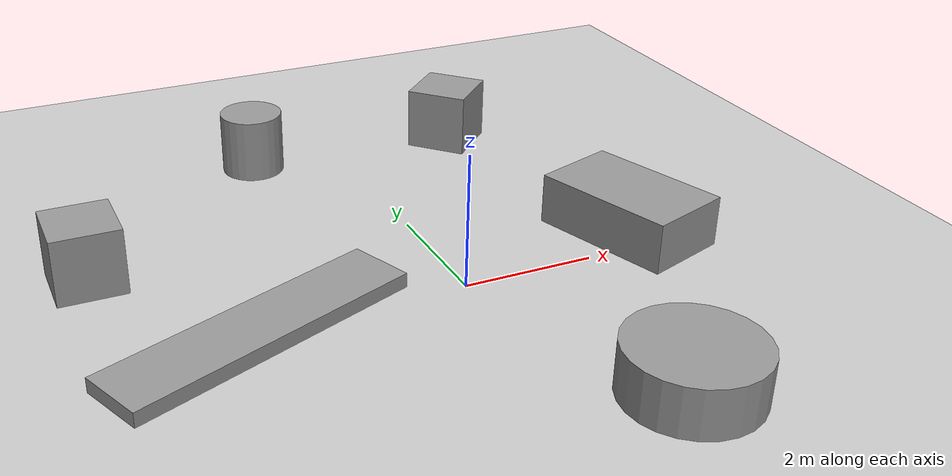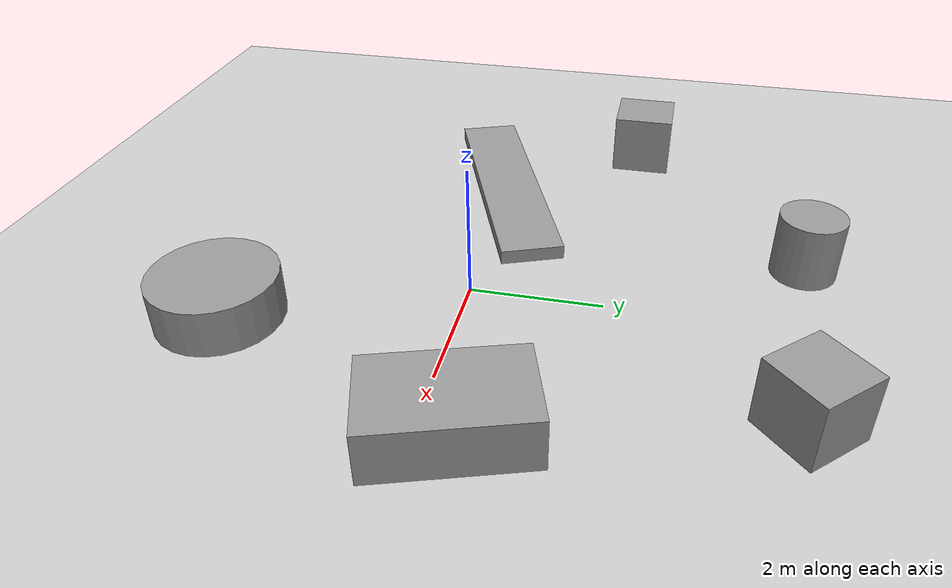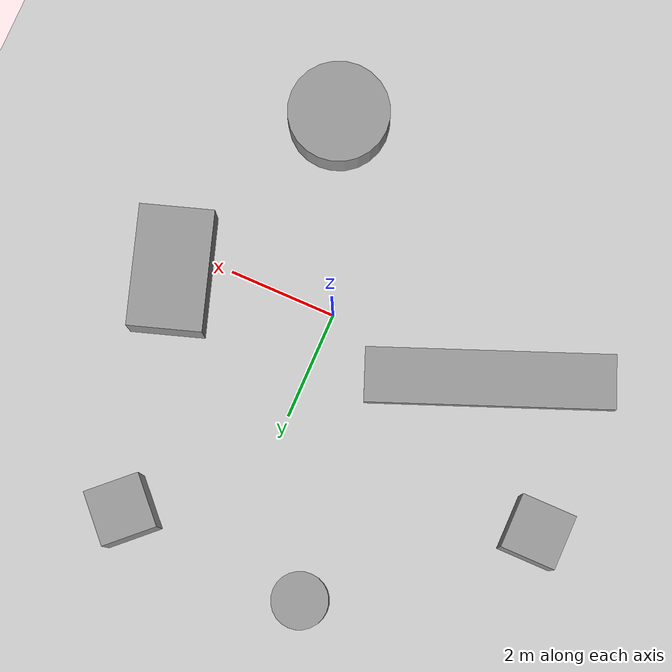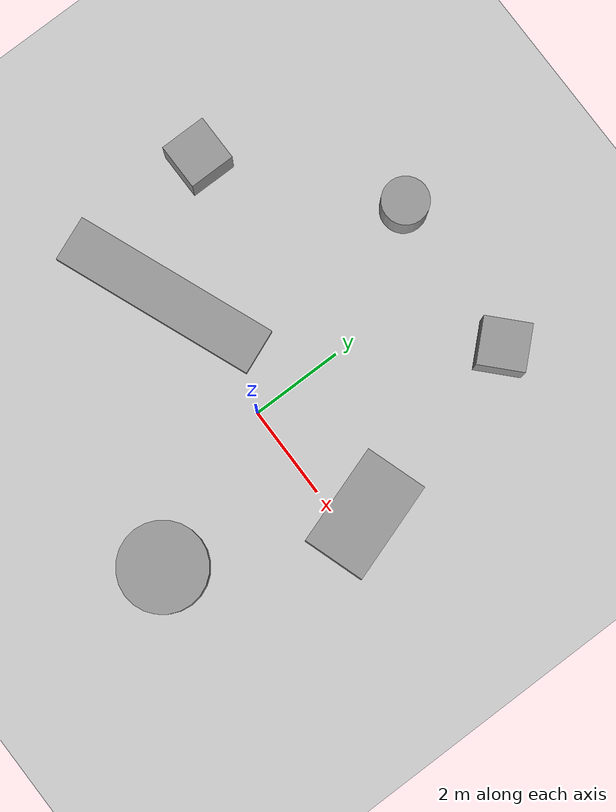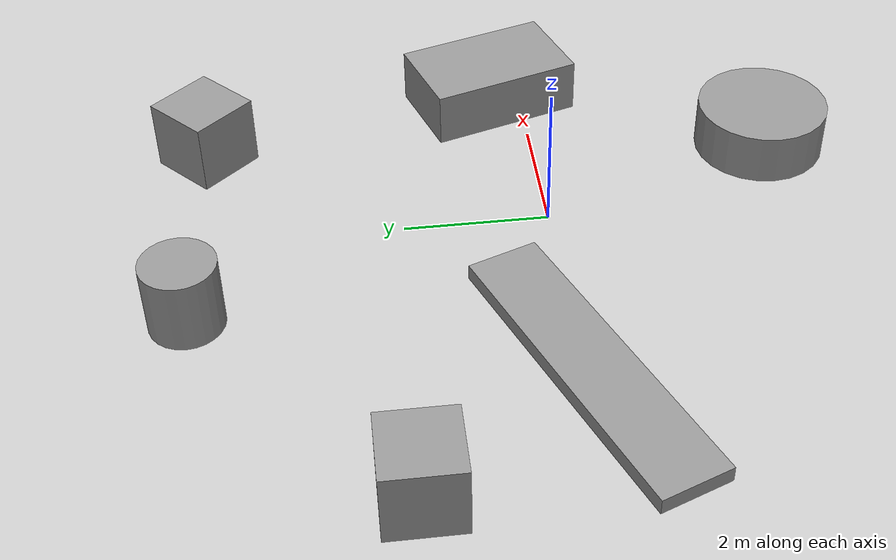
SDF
<sdf version="1.6">
 <world name="default">
  <light name="sun" type="directional">
   <pose>0 0 10 0 -0 0</pose>
   <diffuse>0.8 0.8 0.8 1</diffuse>
   <specular>0.1 0.1 0.1 1</specular>
   <attenuation>
    <range>1000</range>
    <constant>0.9</constant>
    <linear>0.01</linear>
    <quadratic>0.001</quadratic>
   </attenuation>
   <direction>-0.5 0.5 -1</direction>
  </light>
  <model name="ground_plane">
   <static>1</static>
   <link name="link">
    <collision name="collision">
     <geometry><plane><normal>0 0 1</normal><size>100 100</size></plane></geometry>
     <surface><friction><ode><mu>100</mu><mu2>50</mu2></ode></friction></surface>
    </collision>
    <visual name="visual">
     <cast_shadows>0</cast_shadows>
     <geometry><plane><normal>0 0 1</normal><size>100 100</size></plane></geometry>
     <material>
      <script><uri>file://media/materials/scripts/gazebo.material</uri><name>Gazebo/Grey</name></script>
     </material>
    </visual>
   </link>
  </model>
  <gravity>0 0 -9.8</gravity>
  <magnetic_field>6e-06 2.3e-05 -4.2e-05</magnetic_field>
  <atmosphere type="adiabatic"/>
  <physics name="default_physics" default="0" type="ode">
   <max_step_size>0.001</max_step_size>
   <real_time_factor>1</real_time_factor>
   <real_time_update_rate>1000</real_time_update_rate>
  </physics>
  <scene><ambient>0.4 0.4 0.4 1</ambient><background>0.7 0.7 0.7 1</background><shadows>1</shadows></scene>
  <spherical_coordinates>
   <surface_model>EARTH_WGS84</surface_model>
   <latitude_deg>0</latitude_deg>
   <longitude_deg>0</longitude_deg>
   <elevation>0</elevation>
   <heading_deg>0</heading_deg>
  </spherical_coordinates>
  <model name="unit_box_0">
   <pose>-3.0501 -0.060813 0.110386 -1.4e-05 0 0.378447</pose>
   <link name="link">
    <inertial>
     <mass>1</mass>
     <inertia>
      <ixx>0.166667</ixx>
      <ixy>0</ixy>
      <ixz>0</ixz>
      <iyy>0.166667</iyy>
      <iyz>0</iyz>
      <izz>0.166667</izz>
     </inertia>
    </inertial>
    <collision name="collision"><geometry><box><size>4.51732 1 0.220787</size></box></geometry></collision>
    <visual name="visual">
     <geometry><box><size>4.51732 1 0.220787</size></box></geometry>
     <material>
      <script><name>Gazebo/Grey</name><uri>file://media/materials/scripts/gazebo.material</uri></script>
     </material>
    </visual>
   </link>
  </model>
  <model name="unit_cylinder_0">
   <pose>-1.53261 4.8993 0.499998 3e-06 -2e-06 0</pose>
   <link name="link">
    <inertial>
     <mass>1</mass>
     <inertia><ixx>0.145833</ixx><ixy>0</ixy><ixz>0</ixz><iyy>0.145833</iyy><iyz>0</iyz><izz>0.125</izz></inertia>
    </inertial>
    <collision name="collision">
     <geometry><cylinder><radius>0.5</radius><length>1</length></cylinder></geometry>
    </collision>
    <visual name="visual">
     <geometry><cylinder><radius>0.5</radius><length>1</length></cylinder></geometry>
     <material>
      <script><name>Gazebo/Grey</name><uri>file://media/materials/scripts/gazebo.material</uri></script>
     </material>
    </visual>
   </link>
  </model>
  <model name="unit_cylinder_1">
   <pose>1.35124 -3.35873 0.359855 0 -0 0</pose>
   <link name="link">
    <inertial>
     <mass>1</mass>
     <inertia><ixx>0.145833</ixx><ixy>0</ixy><ixz>0</ixz><iyy>0.145833</iyy><iyz>0</iyz><izz>0.125</izz></inertia>
    </inertial>
    <collision name="collision">
     <geometry><cylinder><radius>0.93478</radius><length>0.71971</length></cylinder></geometry>
    </collision>
    <visual name="visual">
     <geometry><cylinder><radius>0.93478</radius><length>0.71971</length></cylinder></geometry>
     <material>
      <script><name>Gazebo/Grey</name><uri>file://media/materials/scripts/gazebo.material</uri></script>
     </material>
    </visual>
   </link>
  </model>
  <model name="unit_box_1">
   <pose>2.93887 0.466924 0.386935 0 1.1e-05 0.317263</pose>
   <link name="link">
    <inertial>
     <mass>1</mass>
     <inertia>
      <ixx>0.166667</ixx>
      <ixy>0</ixy>
      <ixz>0</ixz>
      <iyy>0.166667</iyy>
      <iyz>0</iyz>
      <izz>0.166667</izz>
     </inertia>
    </inertial>
    <collision name="collision"><geometry><box><size>1.35774 2.21106 0.773884</size></box></geometry></collision>
    <visual name="visual">
     <geometry><box><size>1.35774 2.21106 0.773884</size></box></geometry>
     <material>
      <script><name>Gazebo/Grey</name><uri>file://media/materials/scripts/gazebo.material</uri></script>
     </material>
    </visual>
   </link>
  </model>
  <model name="unit_box_2">
   <pose>1.94562 4.70989 0.5 0 0 -0.816455</pose>
   <link name="link">
    <inertial>
     <mass>1</mass>
     <inertia>
      <ixx>0.166667</ixx>
      <ixy>0</ixy>
      <ixz>0</ixz>
      <iyy>0.166667</iyy>
      <iyz>0</iyz>
      <izz>0.166667</izz>
     </inertia>
    </inertial>
    <collision name="collision"><geometry><box><size>1 1 1</size></box></geometry></collision>
    <visual name="visual">
     <geometry><box><size>1 1 1</size></box></geometry>
     <material>
      <script><name>Gazebo/Grey</name><uri>file://media/materials/scripts/gazebo.material</uri></script>
     </material>
    </visual>
   </link>
  </model>
  <model name="unit_box_3">
   <pose>-4.83514 2.17498 0.5 0 -0 0</pose>
   <link name="link">
    <inertial>
     <mass>1</mass>
     <inertia>
      <ixx>0.166667</ixx>
      <ixy>0</ixy>
      <ixz>0</ixz>
      <iyy>0.166667</iyy>
      <iyz>0</iyz>
      <izz>0.166667</izz>
     </inertia>
    </inertial>
    <collision name="collision"><geometry><box><size>1 1 1</size></box></geometry></collision>
    <visual name="visual">
     <geometry><box><size>1 1 1</size></box></geometry>
     <material>
      <script><name>Gazebo/Grey</name><uri>file://media/materials/scripts/gazebo.material</uri></script>
     </material>
    </visual>
   </link>
  </model>
 </world>
</sdf>
